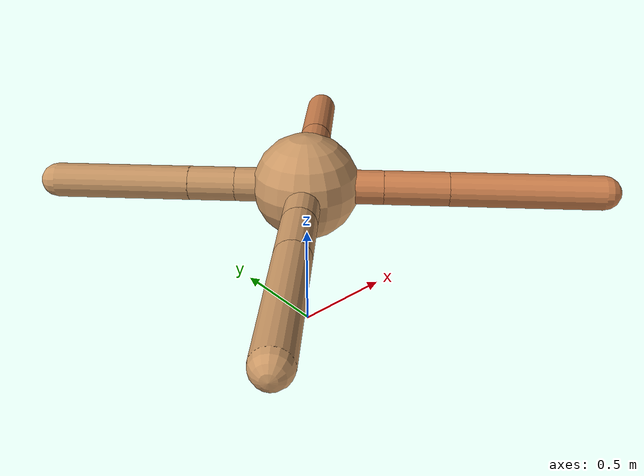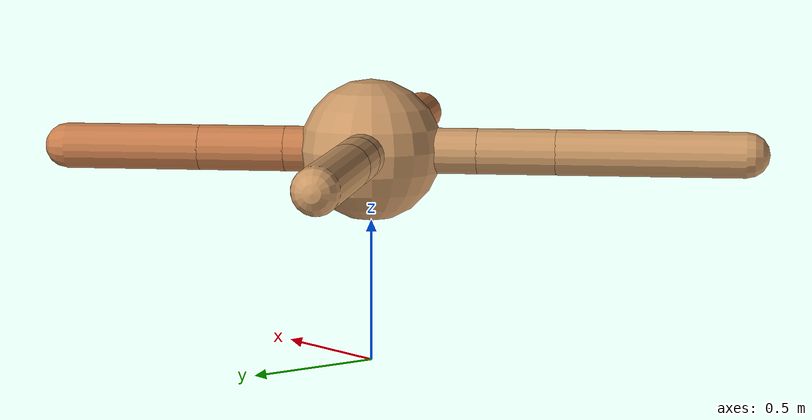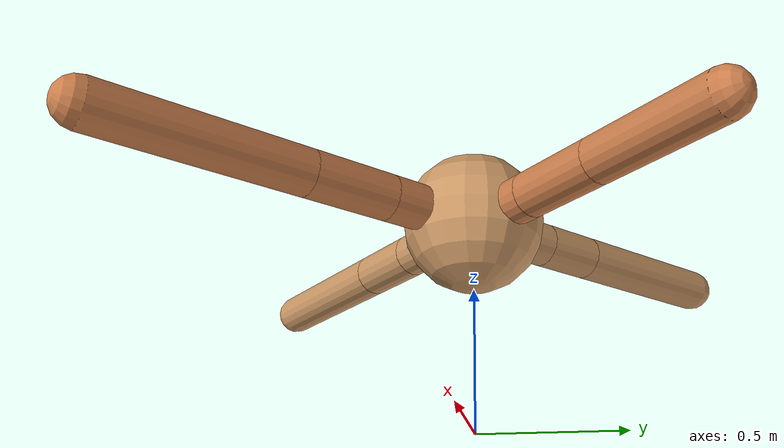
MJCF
<mujoco model="ant">
  <compiler angle="degree" coordinate="local" inertiafromgeom="true" />
  <option integrator="RK4" timestep="0.01" />
  <custom>
    <numeric data="0.0 0.0 0.55 1.0 0.0 0.0 0.0 0.0 1.0 0.0 -1.0 0.0 -1.0 0.0 1.0" name="init_qpos" />
  </custom>
  <default>
    <joint armature="1" damping="1" limited="true" />
    <geom conaffinity="0" condim="3" density="5.0" friction="1.5 0.1 0.1" margin="0.01" rgba="0.8 0.6 0.4 1" />
  </default>
  <worldbody>
    <body name="torso" pos="0 0 0.75">
      <geom name="torso_geom" pos="0 0 0" size="0.25" type="sphere" />

      <body name="front_left_leg" pos="0 0 0">
        <geom fromto="0.0 0.0 0.0 0.215120799592346 0.215120799592346 0.0" name="aux_1_geom" size="0.08" type="capsule" rgba=".8 .5 .3 1" />
        <body name="aux_1" pos="0.215120799592346 0.215120799592346 0.0">
          <joint axis="0 0 1" name="hip_1" pos="0.0 0.0 0.0" range="-40 40" type="hinge" />
          <geom fromto="0.0 0.0 0.0 0.21704008427873048 0.21704008427873048 0.0" name="left_leg_geom" size="0.08" type="capsule" rgba=".8 .5 .3 1" />
          <body pos="0.21704008427873048 0.21704008427873048 0.0" name="front_left_foot">
            <joint axis="-1 1 0" name="ankle_1" pos="0.0 0.0 0.0" range="30 100" type="hinge" />
            <geom fromto="0.0 0.0 0.0 0.340467566989617 0.340467566989617 0.0" name="left_ankle_geom" size="0.08" type="capsule" rgba=".8 .5 .3 1" />
          </body>
        </body>
      </body>
      <body name="front_right_leg" pos="0 0 0">
        <geom fromto="0.0 0.0 0.0 -0.23412132799643298 0.23412132799643298 0.0" name="aux_2_geom" size="0.08" type="capsule" />
        <body name="aux_2" pos="-0.23412132799643298 0.23412132799643298 0.0">
          <joint axis="0 0 1" name="hip_2" pos="0.0 0.0 0.0" range="-40 40" type="hinge" />
          <geom fromto="0.0 0.0 0.0 -0.15488071569264494 0.15488071569264494 0.0" name="right_leg_geom" size="0.08" type="capsule" />
          <body pos="-0.15488071569264494 0.15488071569264494 0.0" name="front_right_foot">
            <joint axis="1 1 0" name="ankle_2" pos="0.0 0.0 0.0" range="-100 -30" type="hinge" />
            <geom fromto="0.0 0.0 0.0 -0.4466838799004532 0.4466838799004532 0.0" name="right_ankle_geom" size="0.08" type="capsule" />
          </body>
        </body>
      </body>
      <body name="left_back_leg" pos="0 0 0">
        <geom fromto="0.0 0.0 0.0 -0.266294852797521 -0.266294852797521 0.0" name="aux_3_geom" size="0.08" type="capsule" />
        <body name="aux_3" pos="-0.266294852797521 -0.266294852797521 0.0">
          <joint axis="0 0 1" name="hip_3" pos="0.0 0.0 0.0" range="-40 40" type="hinge" />
          <geom fromto="0.0 0.0 0.0 -0.19475399317417247 -0.19475399317417247 0.0" name="back_leg_geom" size="0.08" type="capsule" />
          <body pos="-0.19475399317417247 -0.19475399317417247 0.0" name="left_back_foot">
            <joint axis="-1 1 0" name="ankle_3" pos="0.0 0.0 0.0" range="-100 -30" type="hinge" />
            <geom fromto="0.0 0.0 0.0 -0.46673504808142213 -0.46673504808142213 0.0" name="third_ankle_geom" size="0.08" type="capsule" />
          </body>
        </body>
      </body>
      <body name="right_back_leg" pos="0 0 0">
        <geom fromto="0.0 0.0 0.0 0.25592666954157645 -0.25592666954157645 0.0" name="aux_4_geom" size="0.08" type="capsule" rgba=".8 .5 .3 1" />
        <body name="aux_4" pos="0.25592666954157645 -0.25592666954157645 0.0">
          <joint axis="0 0 1" name="hip_4" pos="0.0 0.0 0.0" range="-40 40" type="hinge" />
          <geom fromto="0.0 0.0 0.0 0.21337520004281046 -0.21337520004281046 0.0" name="rightback_leg_geom" size="0.08" type="capsule" rgba=".8 .5 .3 1" />
          <body pos="0.21337520004281046 -0.21337520004281046 0.0" name="right_back_foot">
            <joint axis="1 1 0" name="ankle_4" pos="0.0 0.0 0.0" range="30 100" type="hinge" />
            <geom fromto="0.0 0.0 0.0 0.5002772410293209 -0.5002772410293209 0.0" name="fourth_ankle_geom" size="0.08" type="capsule" rgba=".8 .5 .3 1" />
          </body>
        </body>
      </body>
    </body>
  </worldbody>
  <actuator>
    <motor ctrllimited="true" ctrlrange="-1.0 1.0" joint="hip_4" gear="150" />
    <motor ctrllimited="true" ctrlrange="-1.0 1.0" joint="ankle_4" gear="150" />
    <motor ctrllimited="true" ctrlrange="-1.0 1.0" joint="hip_1" gear="150" />
    <motor ctrllimited="true" ctrlrange="-1.0 1.0" joint="ankle_1" gear="150" />
    <motor ctrllimited="true" ctrlrange="-1.0 1.0" joint="hip_2" gear="150" />
    <motor ctrllimited="true" ctrlrange="-1.0 1.0" joint="ankle_2" gear="150" />
    <motor ctrllimited="true" ctrlrange="-1.0 1.0" joint="hip_3" gear="150" />
    <motor ctrllimited="true" ctrlrange="-1.0 1.0" joint="ankle_3" gear="150" />
  </actuator>
</mujoco>
